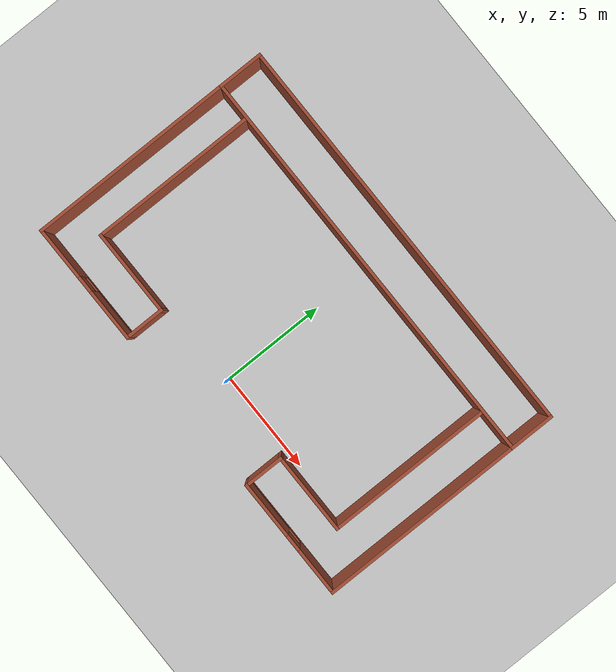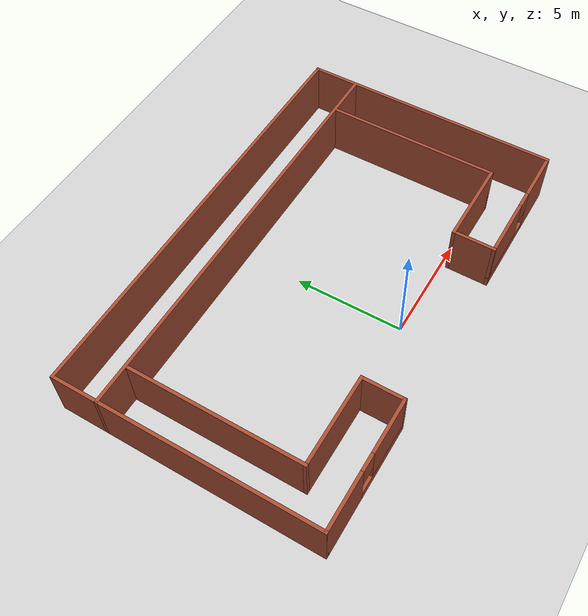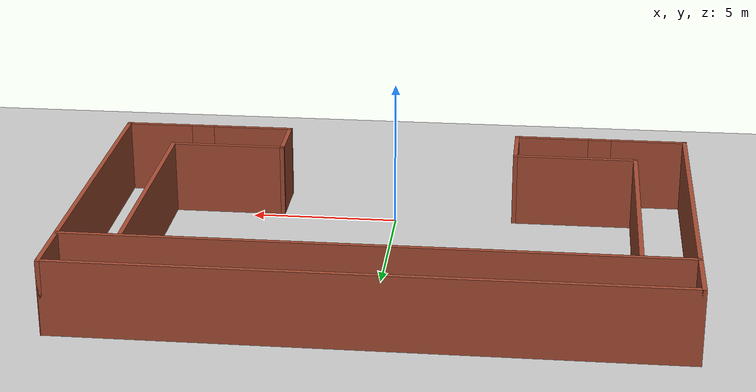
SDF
<sdf version="1.7">
 <world name="default">
  <light name="sun" type="directional">
   <pose>0 0 10 0 -0 0</pose>
   <diffuse>0.8 0.8 0.8 1</diffuse>
   <specular>0.2 0.2 0.2 1</specular>
   <attenuation>
    <range>1000</range>
    <constant>0.9</constant>
    <linear>0.01</linear>
    <quadratic>0.001</quadratic>
   </attenuation>
   <direction>-0.5 0.1 -0.9</direction>
   <spot><inner_angle>0</inner_angle><outer_angle>0</outer_angle><falloff>0</falloff></spot>
  </light>
  <model name="ground_plane">
   <static>1</static>
   <link name="link">
    <collision name="collision">
     <geometry><plane><normal>0 0 1</normal><size>100 100</size></plane></geometry>
     <surface>
      <contact><collide_bitmask>65535</collide_bitmask></contact>
      <friction><ode><mu>100</mu><mu2>50</mu2></ode></friction>
     </surface>
    </collision>
    <visual name="visual">
     <cast_shadows>0</cast_shadows>
     <geometry><plane><normal>0 0 1</normal><size>100 100</size></plane></geometry>
     <material>
      <script><uri>file://media/materials/scripts/gazebo.material</uri><name>Gazebo/Grey</name></script>
     </material>
    </visual>
   </link>
  </model>
  <gravity>0 0 -9.8</gravity>
  <magnetic_field>6e-06 2.3e-05 -4.2e-05</magnetic_field>
  <atmosphere type="adiabatic"/>
  <physics type="ode">
   <max_step_size>0.001</max_step_size>
   <real_time_factor>1</real_time_factor>
   <real_time_update_rate>1000</real_time_update_rate>
  </physics>
  <scene><ambient>0.4 0.4 0.4 1</ambient><background>0.7 0.7 0.7 1</background><shadows>1</shadows></scene>
  <spherical_coordinates>
   <surface_model>EARTH_WGS84</surface_model>
   <latitude_deg>0</latitude_deg>
   <longitude_deg>0</longitude_deg>
   <elevation>0</elevation>
   <heading_deg>0</heading_deg>
  </spherical_coordinates>
  <model name="map_leo_bring_coffee">
   <pose>-0.050753 3.83563 0 0 -0 0</pose>
   <link name="Wall_10">
    <collision name="Wall_10_Collision">
     <geometry><box><size>2.25 0.15 2.5</size></box></geometry>
     <pose>0 0 1.25 0 -0 0</pose>
    </collision>
    <visual name="Wall_10_Visual">
     <pose>0 0 1.25 0 -0 0</pose>
     <geometry><box><size>2.25 0.15 2.5</size></box></geometry>
     <material>
      <script><uri>file://media/materials/scripts/gazebo.material</uri><name>Gazebo/Bricks</name></script>
      <ambient>1 1 1 1</ambient>
     </material>
     <meta><layer>0</layer></meta>
    </visual>
    <pose>9.91343 4.925 0 0 -0 -1.5708</pose>
   </link>
   <link name="Wall_17">
    <collision name="Wall_17_Collision">
     <geometry><box><size>2.25 0.15 2.5</size></box></geometry>
     <pose>0 0 1.25 0 -0 0</pose>
    </collision>
    <visual name="Wall_17_Visual">
     <pose>0 0 1.25 0 -0 0</pose>
     <geometry><box><size>2.25 0.15 2.5</size></box></geometry>
     <material>
      <script><uri>file://media/materials/scripts/gazebo.material</uri><name>Gazebo/Bricks</name></script>
      <ambient>1 1 1 1</ambient>
     </material>
     <meta><layer>0</layer></meta>
    </visual>
    <pose>-9.91343 4.925 0 0 -0 -1.5708</pose>
   </link>
   <link name="Wall_18">
    <collision name="Wall_18_Collision">
     <geometry><box><size>19.9769 0.15 2.5</size></box></geometry>
     <pose>0 0 1.25 0 -0 0</pose>
    </collision>
    <visual name="Wall_18_Visual">
     <pose>0 0 1.25 0 -0 0</pose>
     <geometry><box><size>19.9769 0.15 2.5</size></box></geometry>
     <material>
      <script><uri>file://media/materials/scripts/gazebo.material</uri><name>Gazebo/Bricks</name></script>
      <ambient>1 1 1 1</ambient>
     </material>
     <meta><layer>0</layer></meta>
    </visual>
    <pose>-0 3.875 0 0 -0 0</pose>
   </link>
   <link name="Wall_19">
    <collision name="Wall_19_Collision">
     <geometry><box><size>10 0.15 2.5</size></box></geometry>
     <pose>0 0 1.25 0 -0 0</pose>
    </collision>
    <visual name="Wall_19_Visual">
     <pose>0 0 1.25 0 -0 0</pose>
     <geometry><box><size>10 0.15 2.5</size></box></geometry>
     <material>
      <script><uri>file://media/materials/scripts/gazebo.material</uri><name>Gazebo/Bricks</name></script>
      <ambient>1 1 1 1</ambient>
     </material>
     <meta><layer>0</layer></meta>
    </visual>
    <pose>9.91343 -1.05 0 0 -0 -1.5708</pose>
   </link>
   <link name="Wall_20">
    <pose>6.98843 -5.975 0 0 -0 3.14159</pose>
    <visual name="Wall_20_Visual_0">
     <pose>-1.81166 0 1.25 0 -0 0</pose>
     <geometry><box><size>2.37669 0.15 2.5</size></box></geometry>
     <material>
      <script><uri>file://media/materials/scripts/gazebo.material</uri><name>Gazebo/Bricks</name></script>
      <ambient>1 1 1 1</ambient>
     </material>
     <meta><layer>0</layer></meta>
    </visual>
    <collision name="Wall_20_Collision_0">
     <geometry><box><size>2.37669 0.15 2.5</size></box></geometry>
     <pose>-1.81166 0 1.25 0 -0 0</pose>
    </collision>
    <visual name="Wall_20_Visual_1">
     <pose>1.18834 0 0.25 0 -0 0</pose>
     <geometry><box><size>3.62331 0.15 0.5</size></box></geometry>
     <material>
      <script><uri>file://media/materials/scripts/gazebo.material</uri><name>Gazebo/Bricks</name></script>
      <ambient>1 1 1 1</ambient>
     </material>
     <meta><layer>0</layer></meta>
    </visual>
    <collision name="Wall_20_Collision_1">
     <geometry><box><size>3.62331 0.15 0.5</size></box></geometry>
     <pose>1.18834 0 0.25 0 -0 0</pose>
    </collision>
    <visual name="Wall_20_Visual_2">
     <pose>1.58834 0 1.5 0 -0 0</pose>
     <geometry><box><size>2.82331 0.15 2</size></box></geometry>
     <material>
      <script><uri>file://media/materials/scripts/gazebo.material</uri><name>Gazebo/Bricks</name></script>
      <ambient>1 1 1 1</ambient>
     </material>
     <meta><layer>0</layer></meta>
    </visual>
    <collision name="Wall_20_Collision_2">
     <geometry><box><size>2.82331 0.15 2</size></box></geometry>
     <pose>1.58834 0 1.5 0 -0 0</pose>
    </collision>
    <visual name="Wall_20_Visual_3">
     <pose>-0.223314 0 1.9 0 -0 0</pose>
     <geometry><box><size>0.8 0.15 1.2</size></box></geometry>
     <material>
      <script><uri>file://media/materials/scripts/gazebo.material</uri><name>Gazebo/Bricks</name></script>
      <ambient>1 1 1 1</ambient>
     </material>
     <meta><layer>0</layer></meta>
    </visual>
    <collision name="Wall_20_Collision_3">
     <geometry><box><size>0.8 0.15 1.2</size></box></geometry>
     <pose>-0.223314 0 1.9 0 -0 0</pose>
    </collision>
   </link>
   <link name="Wall_21">
    <collision name="Wall_21_Collision">
     <geometry><box><size>2 0.15 2.5</size></box></geometry>
     <pose>0 0 1.25 0 -0 0</pose>
    </collision>
    <visual name="Wall_21_Visual">
     <pose>0 0 1.25 0 -0 0</pose>
     <geometry><box><size>2 0.15 2.5</size></box></geometry>
     <material>
      <script><uri>file://media/materials/scripts/gazebo.material</uri><name>Gazebo/Bricks</name></script>
      <ambient>1 1 1 1</ambient>
     </material>
     <meta><layer>0</layer></meta>
    </visual>
    <pose>4.06344 -5.05 0 0 -0 1.5708</pose>
   </link>
   <link name="Wall_22">
    <collision name="Wall_22_Collision">
     <geometry><box><size>4 0.15 2.5</size></box></geometry>
     <pose>0 0 1.25 0 -0 0</pose>
    </collision>
    <visual name="Wall_22_Visual">
     <pose>0 0 1.25 0 -0 0</pose>
     <geometry><box><size>4 0.15 2.5</size></box></geometry>
     <material>
      <script><uri>file://media/materials/scripts/gazebo.material</uri><name>Gazebo/Bricks</name></script>
      <ambient>1 1 1 1</ambient>
     </material>
     <meta><layer>0</layer></meta>
    </visual>
    <pose>5.98843 -4.125 0 0 -0 0</pose>
   </link>
   <link name="Wall_23">
    <collision name="Wall_23_Collision">
     <geometry><box><size>8 0.15 2.5</size></box></geometry>
     <pose>0 0 1.25 0 -0 0</pose>
    </collision>
    <visual name="Wall_23_Visual">
     <pose>0 0 1.25 0 -0 0</pose>
     <geometry><box><size>8 0.15 2.5</size></box></geometry>
     <material>
      <script><uri>file://media/materials/scripts/gazebo.material</uri><name>Gazebo/Bricks</name></script>
      <ambient>1 1 1 1</ambient>
     </material>
     <meta><layer>0</layer></meta>
    </visual>
    <pose>7.91343 -0.2 0 0 -0 1.5708</pose>
   </link>
   <link name="Wall_25">
    <collision name="Wall_25_Collision">
     <geometry><box><size>10 0.15 2.5</size></box></geometry>
     <pose>0 0 1.25 0 -0 0</pose>
    </collision>
    <visual name="Wall_25_Visual">
     <pose>0 0 1.25 0 -0 0</pose>
     <geometry><box><size>10 0.15 2.5</size></box></geometry>
     <material>
      <script><uri>file://media/materials/scripts/gazebo.material</uri><name>Gazebo/Bricks</name></script>
      <ambient>1 1 1 1</ambient>
     </material>
     <meta><layer>0</layer></meta>
    </visual>
    <pose>-9.91343 -1.05 0 0 -0 -1.5708</pose>
   </link>
   <link name="Wall_26">
    <pose>-6.98843 -5.975 0 0 -0 0</pose>
    <visual name="Wall_26_Visual_0">
     <pose>-1.68715 0 1.25 0 -0 0</pose>
     <geometry><box><size>2.6257 0.15 2.5</size></box></geometry>
     <material>
      <script><uri>file://media/materials/scripts/gazebo.material</uri><name>Gazebo/Bricks</name></script>
      <ambient>1 1 1 1</ambient>
     </material>
     <meta><layer>0</layer></meta>
    </visual>
    <collision name="Wall_26_Collision_0">
     <geometry><box><size>2.6257 0.15 2.5</size></box></geometry>
     <pose>-1.68715 0 1.25 0 -0 0</pose>
    </collision>
    <visual name="Wall_26_Visual_1">
     <pose>1.31285 0 0.25 0 -0 0</pose>
     <geometry><box><size>3.3743 0.15 0.5</size></box></geometry>
     <material>
      <script><uri>file://media/materials/scripts/gazebo.material</uri><name>Gazebo/Bricks</name></script>
      <ambient>1 1 1 1</ambient>
     </material>
     <meta><layer>0</layer></meta>
    </visual>
    <collision name="Wall_26_Collision_1">
     <geometry><box><size>3.3743 0.15 0.5</size></box></geometry>
     <pose>1.31285 0 0.25 0 -0 0</pose>
    </collision>
    <visual name="Wall_26_Visual_2">
     <pose>1.71285 0 1.5 0 -0 0</pose>
     <geometry><box><size>2.5743 0.15 2</size></box></geometry>
     <material>
      <script><uri>file://media/materials/scripts/gazebo.material</uri><name>Gazebo/Bricks</name></script>
      <ambient>1 1 1 1</ambient>
     </material>
     <meta><layer>0</layer></meta>
    </visual>
    <collision name="Wall_26_Collision_2">
     <geometry><box><size>2.5743 0.15 2</size></box></geometry>
     <pose>1.71285 0 1.5 0 -0 0</pose>
    </collision>
    <visual name="Wall_26_Visual_3">
     <pose>0.0257 0 1.9 0 -0 0</pose>
     <geometry><box><size>0.8 0.15 1.2</size></box></geometry>
     <material>
      <script><uri>file://media/materials/scripts/gazebo.material</uri><name>Gazebo/Bricks</name></script>
      <ambient>1 1 1 1</ambient>
     </material>
     <meta><layer>0</layer></meta>
    </visual>
    <collision name="Wall_26_Collision_3">
     <geometry><box><size>0.8 0.15 1.2</size></box></geometry>
     <pose>0.0257 0 1.9 0 -0 0</pose>
    </collision>
   </link>
   <link name="Wall_27">
    <collision name="Wall_27_Collision">
     <geometry><box><size>2 0.15 2.5</size></box></geometry>
     <pose>0 0 1.25 0 -0 0</pose>
    </collision>
    <visual name="Wall_27_Visual">
     <pose>0 0 1.25 0 -0 0</pose>
     <geometry><box><size>2 0.15 2.5</size></box></geometry>
     <material>
      <script><uri>file://media/materials/scripts/gazebo.material</uri><name>Gazebo/Bricks</name></script>
      <ambient>1 1 1 1</ambient>
     </material>
     <meta><layer>0</layer></meta>
    </visual>
    <pose>-4.06344 -5.05 0 0 -0 1.5708</pose>
   </link>
   <link name="Wall_28">
    <collision name="Wall_28_Collision">
     <geometry><box><size>4.25 0.15 2.5</size></box></geometry>
     <pose>0 0 1.25 0 -0 0</pose>
    </collision>
    <visual name="Wall_28_Visual">
     <pose>0 0 1.25 0 -0 0</pose>
     <geometry><box><size>4.25 0.15 2.5</size></box></geometry>
     <material>
      <script><uri>file://media/materials/scripts/gazebo.material</uri><name>Gazebo/Bricks</name></script>
      <ambient>1 1 1 1</ambient>
     </material>
     <meta><layer>0</layer></meta>
    </visual>
    <pose>-6.11343 -4.125 0 0 -0 3.14159</pose>
   </link>
   <link name="Wall_29">
    <collision name="Wall_29_Collision">
     <geometry><box><size>8 0.15 2.5</size></box></geometry>
     <pose>0 0 1.25 0 -0 0</pose>
    </collision>
    <visual name="Wall_29_Visual">
     <pose>0 0 1.25 0 -0 0</pose>
     <geometry><box><size>8 0.15 2.5</size></box></geometry>
     <material>
      <script><uri>file://media/materials/scripts/gazebo.material</uri><name>Gazebo/Bricks</name></script>
      <ambient>1 1 1 1</ambient>
     </material>
     <meta><layer>0</layer></meta>
    </visual>
    <pose>-8.16343 -0.2 0 0 -0 1.5708</pose>
   </link>
   <link name="Wall_5">
    <collision name="Wall_5_Collision">
     <geometry><box><size>19.9537 0.15 2.5</size></box></geometry>
     <pose>0 0 1.25 0 -0 0</pose>
    </collision>
    <visual name="Wall_5_Visual">
     <pose>0 0 1.25 0 -0 0</pose>
     <geometry><box><size>19.9537 0.15 2.5</size></box></geometry>
     <material>
      <script><uri>file://media/materials/scripts/gazebo.material</uri><name>Gazebo/Bricks</name></script>
      <ambient>1 1 1 1</ambient>
     </material>
     <meta><layer>0</layer></meta>
    </visual>
    <pose>-0.011565 5.975 0 0 -0 0</pose>
   </link>
   <static>1</static>
  </model>
 </world>
</sdf>
